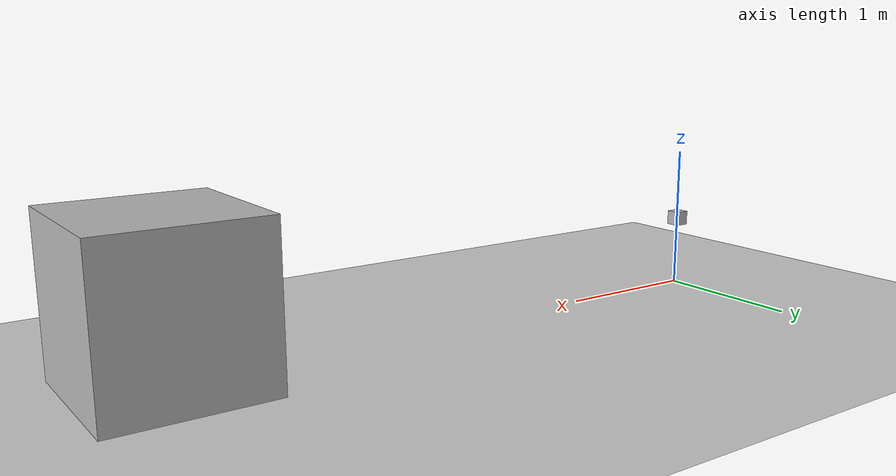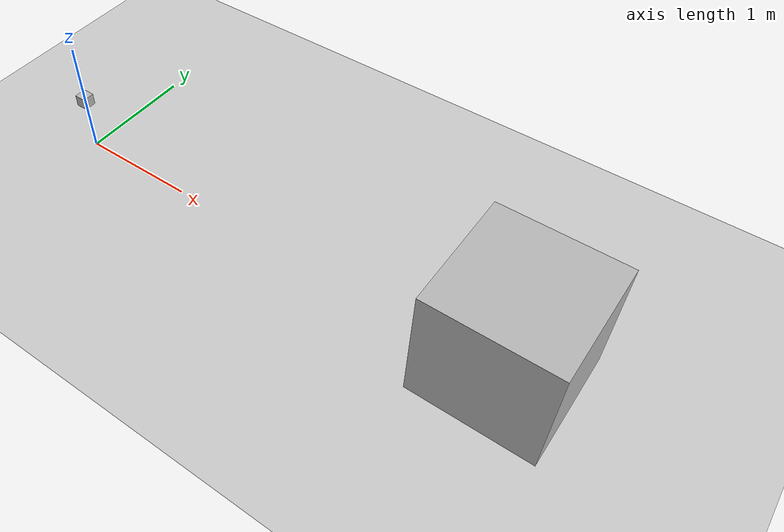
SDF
<?xml version="1.0" ?>
<sdf version="1.6">
  <world name="gpu_lidar_probe">

    <physics name="1ms" type="ignored">
      <max_step_size>0.001</max_step_size>
      <real_time_factor>1.0</real_time_factor>
    </physics>

    <plugin filename="gz-sim-physics-system"
            name="gz::sim::systems::Physics"/>
    <plugin filename="gz-sim-user-commands-system"
            name="gz::sim::systems::UserCommands"/>
    <plugin filename="gz-sim-scene-broadcaster-system"
            name="gz::sim::systems::SceneBroadcaster"/>

    <!-- 소나 월드와 같은 렌더 엔진. 여기가 문제의 축이다. -->
    <plugin filename="gz-sim-sensors-system"
            name="gz::sim::systems::Sensors">
      <render_engine>ogre2</render_engine>
    </plugin>

    <light type="directional" name="sun">
      <cast_shadows>true</cast_shadows>
      <pose>0 0 10 0 0 0</pose>
      <diffuse>0.8 0.8 0.8 1</diffuse>
      <specular>0.2 0.2 0.2 1</specular>
      <direction>-0.5 0.1 -0.9</direction>
    </light>

    <model name="ground_plane">
      <static>true</static>
      <link name="link">
        <collision name="collision">
          <geometry><plane><normal>0 0 1</normal></plane></geometry>
        </collision>
        <visual name="visual">
          <geometry><plane><normal>0 0 1</normal><size>50 50</size></plane></geometry>
        </visual>
      </link>
    </model>

    <!-- 레이가 맞출 대상. 빈 장면이면 센서가 일을 안 할 수 있다. -->
    <model name="target_box">
      <static>true</static>
      <pose>4 0 0.5 0 0 0</pose>
      <link name="link">
        <collision name="collision">
          <geometry><box><size>1 1 1</size></box></geometry>
        </collision>
        <visual name="visual">
          <geometry><box><size>1 1 1</size></box></geometry>
        </visual>
      </link>
    </model>

    <model name="lidar_model">
      <static>true</static>
      <pose>0 0 0.5 0 0 0</pose>
      <link name="link">
        <inertial>
          <mass>0.1</mass>
          <inertia>
            <ixx>0.001</ixx><ixy>0</ixy><ixz>0</ixz>
            <iyy>0.001</iyy><iyz>0</iyz><izz>0.001</izz>
          </inertia>
        </inertial>
        <visual name="visual">
          <geometry><box><size>0.1 0.1 0.1</size></box></geometry>
        </visual>

        <sensor name="gpu_lidar" type="gpu_lidar">
          <topic>gpu_lidar</topic>
          <always_on>1</always_on>
          <update_rate>10</update_rate>
          <visualize>false</visualize>
          <ray>
            <scan>
              <horizontal>
                <samples>513</samples>
                <resolution>1</resolution>
                <min_angle>-1.047</min_angle>
                <max_angle>1.047</max_angle>
              </horizontal>
              <vertical>
                <samples>301</samples>
                <resolution>1</resolution>
                <min_angle>-0.262</min_angle>
                <max_angle>0.262</max_angle>
              </vertical>
            </scan>
            <range>
              <min>0.08</min>
              <max>10.0</max>
              <resolution>0.01</resolution>
            </range>
          </ray>
        </sensor>
      </link>
    </model>

  </world>
</sdf>
